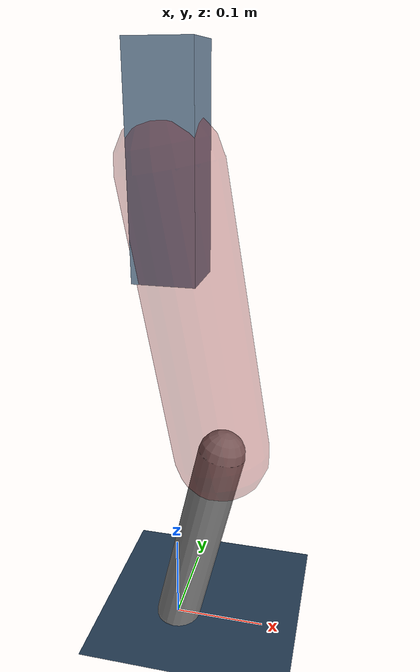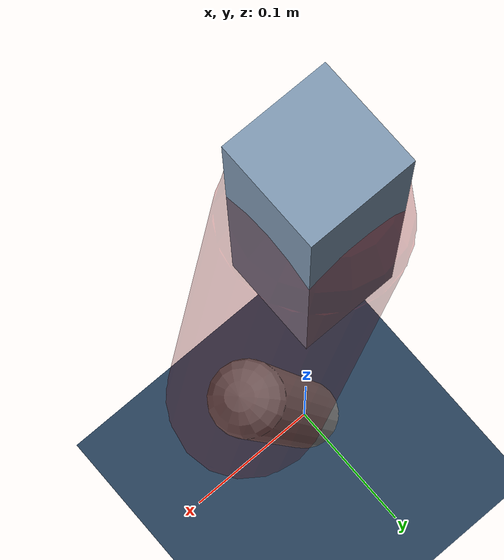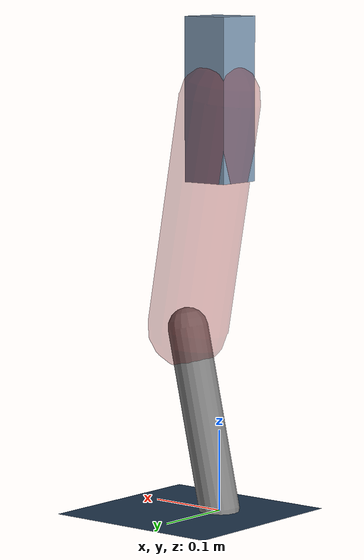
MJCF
<mujoco model="Hopper2D">
	<compiler inertiafromgeom="true" angle="radian" />
	<option timestep="0.001" integrator="implicit" cone="elliptic" solver="Newton" tolerance="1e-10" />

	<default>
		<geom contype="1" conaffinity="1" condim="3" friction="2 0.005 0.0001" solref="0.005 1" />
		<joint limited="true" damping="0.1" />
	</default>

	<asset>
		<texture name="skybox" type="skybox" builtin="gradient" rgb1=".4 .6 .8" rgb2="0 0 0" width="800" height="800" />
		<texture name="grid" type="2d" builtin="checker" rgb1=".1 .2 .3" rgb2=".2 .3 .4" width="300" height="300" mark="edge" markrgb=".2 .3 .4" />
		<material name="ground" texture="grid" texrepeat="1 1" texuniform="true" reflectance="0.1" />
		<material name="leg" rgba="0.5 0.6 0.7 1" />
	</asset>

	<worldbody>

		<geom name="floor" type="plane" size="5 5 0.25" material="ground" />

		<light directional="false" diffuse="0.8 0.8 0.8" specular="0.3 0.3 0.3" pos="0 0 2" dir="0 0 -1" />
		<light mode="targetbodycom" target="base" directional="false" diffuse="0.8 0.8 0.8" specular="0.3 0.3 0.3" pos="0 0 2" dir="0 0 -1" />

		<camera name="fixed" pos="0 -2 1" xyaxes="1 0 0 0 0 1" />
		<camera name="tracking" mode="trackcom" pos="0 -3 1" />

		<body name="root" pos="0 0 0.506160056591723">
			<joint name="slide_x" type="slide" axis="1 0 0" range="-100 100" />
			<joint name="slide_z" type="slide" axis="0 0 1" range="0 10" />

			<body name="base" pos="0 0 0">
				<geom name="torso" type="box" size="0.03 0.03 0.1" mass="3.471" material="leg" />

				<body name="link1" pos="0 0 0" euler="0 1.3953860037299792 0">
					<joint type="hinge" axis="0 -1 0" pos="0 0 0" name="hinge1" limited="true" range="-3.14 3.14" stiffness="0" damping="0.1" />
					<geom name="thigh" type="capsule" fromto="0 0 0 0.287701655446095 0 0" size="0.05" rgba="0.5 0 0 0.3" mass="0.9556944697044566" />

					<body name="link2" pos="0.287701655446095 0 0" euler="0 0.3969851643756112 0">
						<joint type="hinge" axis="0 -1 0" pos="0 0 0" name="hinge2" limited="true" range="-3.14 3.14" stiffness="0" damping="0.1" />
						<geom name="shank" type="capsule" fromto="0 0 0 0.228458401145628 0 0" size="0.025" mass="0.4247125610310652" />

					</body>
				</body>
			</body>
		</body>
	</worldbody>

	<actuator>
		<motor name="torque1" joint="hinge1" ctrlrange="-104.88227076498046 104.88227076498046" ctrllimited="true" gear="1" />
		<motor name="torque2" joint="hinge2" ctrlrange="-154.27098336486745 154.27098336486745" ctrllimited="true" gear="1" />
	</actuator>
</mujoco>
